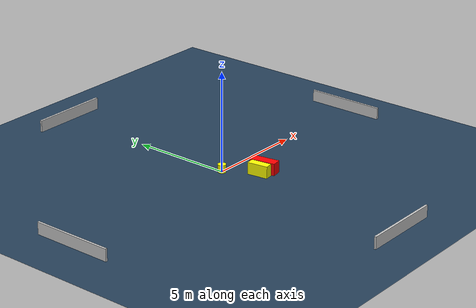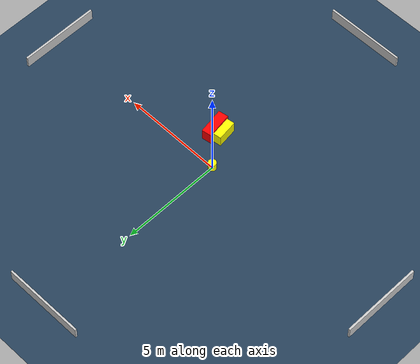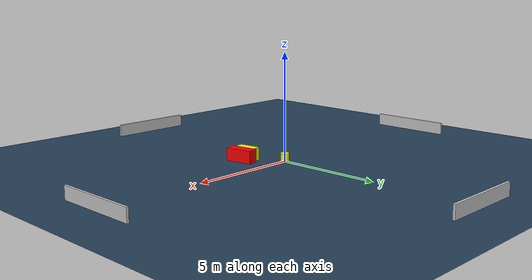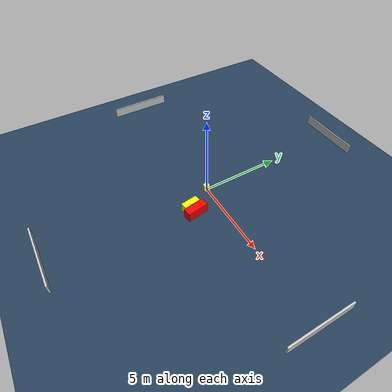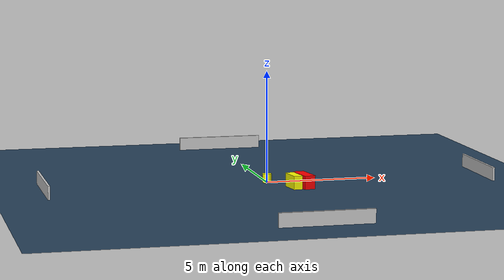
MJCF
<?xml version="1.0" ?>
<mujoco model="generated_environment">
  <option timestep="0.01" integrator="RK4" cone="elliptic"/>
  <default>
    <geom density="1"/>
  </default>
  <asset>
    <texture builtin="gradient" height="3072" name="skybox" rgb1="0.3 0.5 0.7" rgb2="0 0 0" type="skybox" width="512"/>
    <texture builtin="checker" height="300" name="groundplane" rgb1="0.2 0.3 0.4" rgb2="0.1 0.2 0.3" type="2d" width="300"/>
    <material name="groundplane" reflectance="0.2" texrepeat="5 5" texture="groundplane"/>
  </asset>
  <worldbody>
    <light dir="0 0 -1" directional="true" pos="0 0 1.5"/>
    <geom condim="3" friction="0.5 0.005 0.001" material="groundplane" name="floor" pos="0 0 0" size="0 0 0.05" type="plane"/>
    <body name="walls">
      <geom name="wall_1" condim="4" pos="-10.0 0.0 0.3" rgba="0.800000011920929 0.800000011920929 0.800000011920929 1.0" size="0.05 2.0 0.3" type="box"/>
      <geom name="wall_2" condim="4" pos="10.0 0.0 0.3" rgba="0.800000011920929 0.800000011920929 0.800000011920929 1.0" size="0.05 2.0 0.3" type="box"/>
      <geom name="wall_3" condim="4" pos="0.0 -10.0 0.3" rgba="0.800000011920929 0.800000011920929 0.800000011920929 1.0" size="2.0 0.05 0.3" type="box"/>
      <geom name="wall_4" condim="4" pos="0.0 10.0 0.3" rgba="0.800000011920929 0.800000011920929 0.800000011920929 1.0" size="2.0 0.05 0.3" type="box"/>
    </body>
    <body name="robot">
      <joint name="joint_x" type="slide" pos="0 0 0" axis="1 0 0"/>
      <joint name="joint_y" type="slide" pos="0 0 0" axis="0 1 0"/>
      <geom name="robot" type="cylinder" pos="0.0 0.0 0.2" size="0.2 0.2 0.0" mass="5.0" friction="1.0 0.005 0.0001" condim="4" rgba="1.0 1.0 0.0 1.0"/>
    </body>
    <body name="obstacle_1_movable">
      <geom name="obstacle_1_movable" condim="4" pos="0.8401674717555722 -1.5712820827722567 0.3" euler="0 0 97.89348470963427" friction="0.0 0.005 0.001" rgba="1.0 1.0 0.0 1.0" size="0.5130531575394512 0.2003799614722683 0.3" type="box" mass="0.1"/>
      <joint type="free"/>
    </body>
    <body name="obstacle_2_static">
      <geom name="obstacle_2_static" condim="4" pos="1.316565867326725 -1.4884763465569963 0.3" euler="0 0 279.22969754591014" friction="0.0 0.005 0.001" rgba="1.0 0.0 0.0 1.0" size="0.6566769025839865 0.24679264178402646 0.3" type="box"/>
    </body>
  </worldbody>
  <actuator>
    <motor name="actuator_x" joint="joint_x" gear="1" ctrlrange="-1 1"/>
    <motor name="actuator_y" joint="joint_y" gear="1" ctrlrange="-1 1"/>
  </actuator>
</mujoco>
